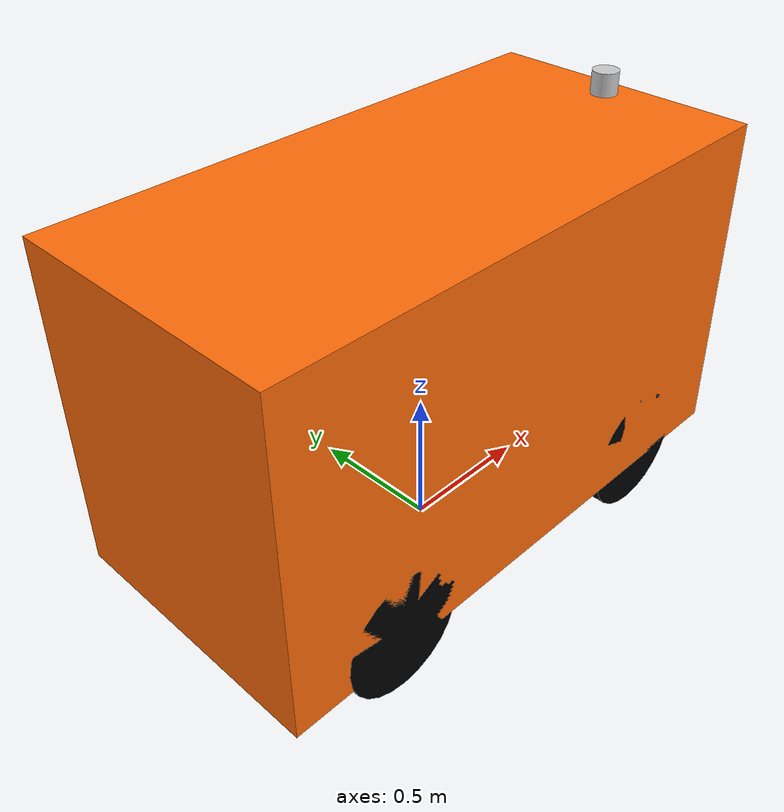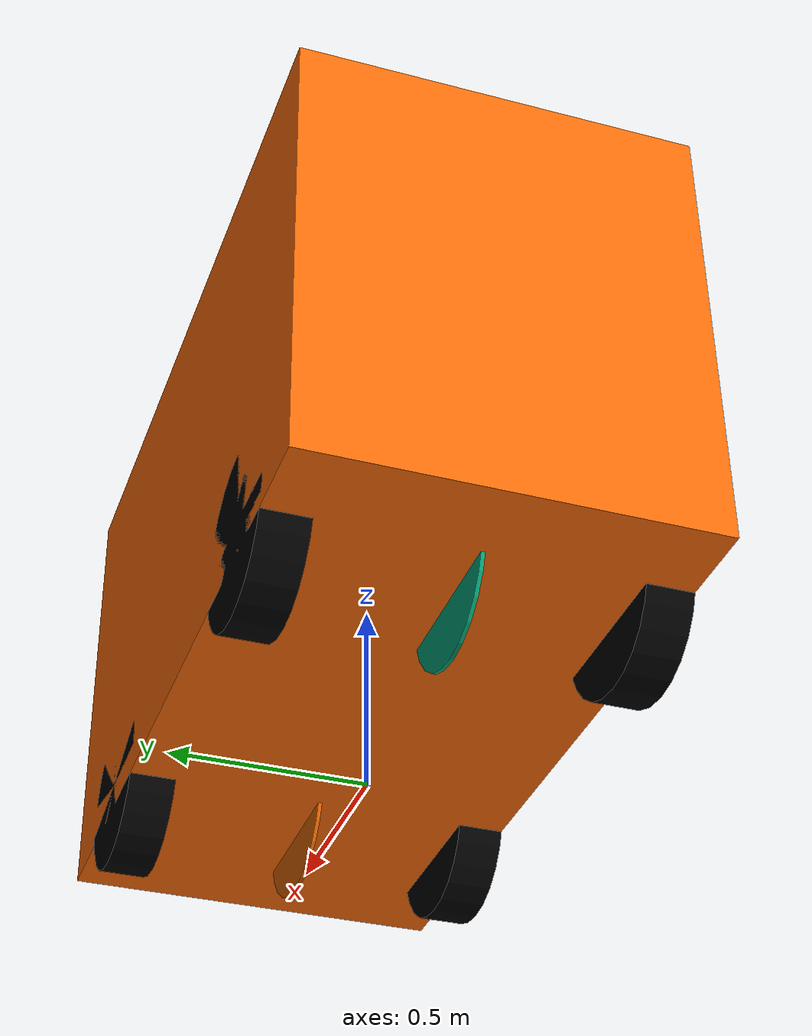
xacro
<?xml version="1.0"?>
<!-- 4 Wheel Robot with front steering and rear drive -->
<robot xmlns:xacro="http://www.ros.org/wiki/xacro" name="delicar_robot">

  <xacro:arg name="prefix" default="" />

  <xacro:arg name="use_sim" default="false" />

  <xacro:include filename="$(find delicar_description)/urdf/robot/color.materials.xacro" />
  <xacro:include filename="$(find delicar_description)/urdf/robot/delicar_description.urdf.xacro" />
  <xacro:include filename="$(find delicar_description)/urdf/sensors/imu.urdf.xacro" />
  <xacro:include filename="$(find delicar_description)/urdf/sensors/rslidar.urdf.xacro" />
  <xacro:include filename="$(find delicar_description)/urdf/controllers/delicar_controllers.xacro" />

  <!-- Import delicar description -->
  <xacro:delicar prefix="$(arg prefix)" />

  <!-- Import camera -->

  <!-- Import imu -->

  <!-- Import 3d lidar -->
  <xacro:rslidar
    prefix="$(arg prefix)"
    frame_id="rslidar"
  />

  <!-- Import controllers -->
  <xacro:delicar_ros2_control name="Delicar" prefix="$(arg prefix)" />
</robot>

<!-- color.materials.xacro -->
<robot name="xacro_properties"
  xmlns:xacro="http://ros.org/wiki/xacro">

  <!-- Init colour -->
  <material name="black">
    <color rgba="0.0 0.0 0.0 1.0" />
  </material>

  <material name="dark">
    <color rgba="0.3 0.3 0.3 1.0" />
  </material>
  <material name="light_black">
    <color rgba="0.4 0.4 0.4 1.0" />
  </material>

  <material name="blue">
    <color rgba="0.0 0.0 0.8 1.0" />
  </material>

  <material name="green">
    <color rgba="0.0 0.8 0.0 1.0" />
  </material>

  <material name="grey">
    <color rgba="0.5 0.5 0.5 1.0" />
  </material>

  <material name="orange">
    <color rgba="${255/255} ${108/255} ${10/255} 1.0" />
  </material>

  <material name="brown">
    <color rgba="${222/255} ${207/255} ${195/255} 1.0" />
  </material>

  <material name="red">
    <color rgba="0.8 0.0 0.0 1.0" />
  </material>

  <material name="white">
    <color rgba="1.0 1.0 1.0 1.0" />
  </material>

</robot>

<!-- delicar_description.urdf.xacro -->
<robot xmlns:xacro="http://www.ros.org/wiki/xacro">

  <xacro:macro name="delicar" params="prefix">

    <!-- Constants for robot dimensions -->
    <xacro:property name="PI" value="3.1415926535897931" />
    <xacro:property name="base_mass" value="40.0" /> <!-- arbitrary value for base mass -->
    <xacro:property name="base_width" value="1.020" />
    <xacro:property name="base_length" value="2.062" />
    <xacro:property name="base_height" value="1.212" />
    <xacro:property name="wheelbase" value="1.197" />
    <xacro:property name="wheel_mass" value="1" /> <!-- arbitrary value for wheel mass -->
    <xacro:property name="wheel_len" value="0.12" />
    <xacro:property name="wheel_radius" value="0.225" />
    <xacro:property name="wheeltrack" value="1.00" />

    <!-- Base Link -->
    <link name="${prefix}base_link" />

    <!-- Chassis -->

    <link name="${prefix}chassis_link">
      <collision>
        <origin xyz="0 0 0" rpy="0 0 0" />
        <geometry>
          <box size="${base_length} ${base_width} ${base_height}" />
        </geometry>
      </collision>

      <visual>
        <origin xyz="0 0 0" rpy="0 0 0" />
        <geometry>
          <box size="${base_length} ${base_width} ${base_height}" />
        </geometry>
        <material name="orange">
        </material>
      </visual>

      <inertial>
        <origin xyz="0 0 0" rpy="0 0 0" />
        <mass value="${base_mass}" />
        <inertia
          ixx="0.000270" ixy="0.0" ixz="0.0"
          iyy="0.000270" iyz="0.0"
          izz="0.000426" />
      </inertial>
    </link>

    <joint name="${prefix}chassis_joint" type="fixed">
      <parent link="${prefix}base_link" />
      <child link="${prefix}chassis_link" />
      <origin xyz="0 0 ${base_height/2 + 0.153}" rpy="0 0 0" />
      <axis xyz="0 0 1" />
      <dynamics damping="0.2" />
    </joint>

    <!-- rear wheels -->

    <!-- virtual rear wheel -->

    <link name="${prefix}virtual_rear_wheel">
      <visual>
        <origin xyz="0 0 0" rpy="${PI/2} 0 ${PI/2}" />
        <geometry>
          <cylinder length="0.01" radius="${wheel_radius}" />
        </geometry>
        <material name="invisible" />
      </visual>
    </link>

    <joint name="${prefix}virtual_rear_wheel_joint" type="continuous">
      <parent link="${prefix}base_link" />
      <child link="${prefix}virtual_rear_wheel" />
      <origin xyz="-${wheelbase/2} 0 ${wheel_radius}" rpy="0 0 ${PI/2}" />
      <axis xyz="1 0 0" />
      <limit effort="100.0" velocity="100.0" />
      <dynamics damping="0.2" />
    </joint>

    <!-- rear right wheel -->

    <link name="${prefix}rear_right_wheel">
      <collision>
        <origin xyz="0 0 0" rpy="${PI/2} 0 ${PI/2}" />
        <geometry>
          <cylinder length="${wheel_len}" radius="${wheel_radius}" />
        </geometry>
      </collision>

      <visual>
        <origin xyz="0 0 0" rpy="${PI/2} 0 ${PI/2}" />
        <geometry>
          <cylinder length="${wheel_len}" radius="${wheel_radius}" />
        </geometry>
        <material name="black" />
      </visual>

      <inertial>
        <origin xyz="0 0 0" rpy="${PI/2} 0 ${PI/2}" />
        <mass value="${wheel_mass}" />
        <inertia
          ixx="0.000270" ixy="0.0" ixz="0.0"
          iyy="0.000270" iyz="0.0"
          izz="0.000426" />
      </inertial>

    </link>

    <joint name="${prefix}rear_right_wheel_joint" type="continuous">
      <parent link="${prefix}base_link" />
      <child link="${prefix}rear_right_wheel" />
      <origin xyz="-${wheelbase/2} ${base_width/2 - wheel_len/2} ${wheel_radius}" rpy="0 0 ${PI/2}" />
      <axis xyz="1 0 0" />
      <limit effort="100.0" velocity="100.0" />
      <dynamics damping="0.2" />
      <mimic joint="${prefix}virtual_rear_wheel_joint" multiplier="1.0" offset="0.0" />
    </joint>

    <!-- rear left wheel -->
    <link name="${prefix}rear_left_wheel">
      <collision>
        <origin xyz="0 0 0" rpy="${PI/2} 0 ${PI/2}" />
        <geometry>
          <cylinder length="${wheel_len}" radius="${wheel_radius}" />
        </geometry>
      </collision>

      <visual>
        <origin xyz="0 0 0" rpy="${PI/2} 0 ${PI/2}" />
        <geometry>
          <cylinder length="${wheel_len}" radius="${wheel_radius}" />
        </geometry>
        <material name="black" />
      </visual>

      <inertial>
        <origin xyz="0 0 0" rpy="${PI/2} 0 ${PI/2}" />
        <mass value="${wheel_mass}" />
        <inertia
          ixx="0.000270" ixy="0.0" ixz="0.0"
          iyy="0.000270" iyz="0.0"
          izz="0.000426" />
      </inertial>

    </link>

    <joint name="${prefix}rear_left_wheel_joint" type="continuous">
      <parent link="${prefix}base_link" />
      <child link="${prefix}rear_left_wheel" />
      <origin xyz="-${wheelbase/2} -${base_width/2 - wheel_len/2} ${wheel_radius}" rpy="0 0 ${PI/2}" />
      <axis xyz="1 0 0" />
      <limit effort="100.0" velocity="100.0" />
      <dynamics damping="0.2" />
      <mimic joint="${prefix}virtual_rear_wheel_joint" multiplier="1.0" offset="0.0" />
    </joint>

    <!-- front wheels -->

    <!-- virtual front wheel -->

    <link name="${prefix}virtual_front_wheel">
      <visual>
        <origin xyz="0 0 0" rpy="${PI/2} 0 ${PI/2}" />
        <geometry>
          <cylinder length="0.01" radius="${wheel_radius}" />
        </geometry>
        <material name="invisible" />
      </visual>
    </link>

    <joint name="${prefix}virtual_front_wheel_joint" type="revolute">
      <parent link="${prefix}base_link" />
      <child link="${prefix}virtual_front_wheel" />
      <origin xyz="${wheelbase/2} 0 ${wheel_radius}" rpy="0 0 ${PI/2}" />
      <axis xyz="0 0 1" />
      <limit lower="-0.4" upper="0.4" effort="100.0" velocity="0.0" />
      <dynamics damping="0.2" />
    </joint>

    <!-- front right wheel -->

    <link name="${prefix}front_right_wheel">

      <collision>
        <origin xyz="0 0 0" rpy="${PI/2} 0 ${PI/2}" />
        <geometry>
          <cylinder length="${wheel_len}" radius="${wheel_radius}" />
        </geometry>
      </collision>

      <visual>
        <origin xyz="0 0 0" rpy="${PI/2} 0 ${PI/2}" />
        <geometry>
          <cylinder length="${wheel_len}" radius="${wheel_radius}" />
        </geometry>
        <material name="black" />
      </visual>

      <inertial>
        <origin xyz="0 0 0" rpy="${PI/2} 0 ${PI/2}" />
        <mass value="${wheel_mass}" />
        <inertia
          ixx="0.000270" ixy="0.0" ixz="0.0"
          iyy="0.000270" iyz="0.0"
          izz="0.000426" />
      </inertial>
    </link>

    <joint name="${prefix}front_right_wheel_joint" type="revolute">
      <parent link="${prefix}base_link" />
      <child link="${prefix}front_right_wheel" />
      <origin xyz="${wheelbase/2} ${base_width/2 - wheel_len/2} ${wheel_radius}" rpy="0 0 ${PI/2}" />
      <axis xyz="0 0 1" />
      <limit lower="-0.4" upper="0.4" effort="100.0" velocity="0.0" />
      <dynamics damping="0.2" />
      <mimic joint="${prefix}virtual_front_wheel_joint" multiplier="1.0" offset="0.0" />
    </joint>

    <!-- front left steering -->

    <link name="${prefix}front_left_wheel">
      <collision>
        <origin xyz="0 0 0" rpy="${PI/2} 0 ${PI/2}" />
        <geometry>
          <cylinder length="${wheel_len}" radius="${wheel_radius}" />
        </geometry>
      </collision>

      <visual>
        <origin xyz="0 0 0" rpy="${PI/2} 0 ${PI/2}" />
        <geometry>
          <cylinder length="${wheel_len}" radius="${wheel_radius}" />
        </geometry>
        <material name="black" />
      </visual>

      <inertial>
        <origin xyz="0 0 0" rpy="${PI/2} 0 ${PI/2}" />
        <mass value="${wheel_mass}" />
        <inertia
          ixx="0.000270" ixy="0.0" ixz="0.0"
          iyy="0.000270" iyz="0.0"
          izz="0.000426" />
      </inertial>

    </link>

    <joint name="${prefix}front_left_wheel_joint" type="revolute">
      <parent link="${prefix}base_link" />
      <child link="${prefix}front_left_wheel" />
      <origin xyz="${wheelbase/2} -${base_width/2 - wheel_len/2} ${wheel_radius}" rpy="0 0 ${PI/2}" />
      <axis xyz="0 0 1" />
      <limit lower="-0.4" upper="0.4" effort="100.0" velocity="0.0" />
      <dynamics damping="0.2" />
      <mimic joint="${prefix}virtual_front_wheel_joint" multiplier="1.0" offset="0.0" />
    </joint>

  </xacro:macro>

</robot>

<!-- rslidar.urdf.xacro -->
<robot xmlns:xacro="http://ros.org/wiki/xacro">
  <xacro:property name="M_PI" value="3.1415926535897931" />
  <xacro:macro name="rslidar" params="prefix frame_id">
    <link name="${frame_id}">
      <visual>
        <origin xyz="0 0 0" rpy="0 0 0" />
        <geometry>
          <cylinder radius="0.04875" length="0.1" />
        </geometry>
        <material name="gray">
          <color rgba="0.8 0.8 0.8 1.0" />
        </material>
      </visual>
      <collision>
        <origin xyz="0 0 0" rpy="0 0 0" />
        <geometry>
          <cylinder radius="0.04875" length="0.1" />
        </geometry>
      </collision>
      <inertial>
        <origin xyz="0 0 0" rpy="0 0 0" />
        <mass value="0.1" />
        <inertia ixx="${(2/5) * 0.1 * (0.04875 * 0.04875)}" ixy="0" ixz="0"
          iyy="${(2/5) * 0.1 * (0.04875 * 0.04875)}" iyz="0"
          izz="${(2/5) * 0.1 * (0.04875 * 0.04875)}" />
      </inertial>
    </link>

    <joint name="lidar_to_base_link" type="fixed">
      <parent link="${prefix}base_link" />
      <child link="${frame_id}" />
      <origin xyz="0.93 0 1.4" rpy="0 0 0" />
    </joint>

  </xacro:macro>
</robot>
